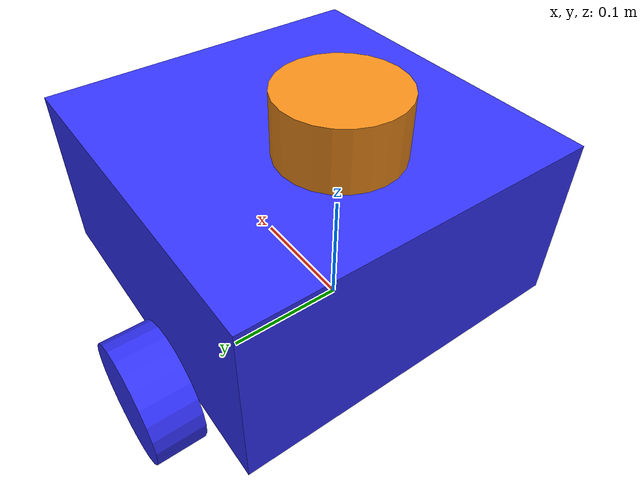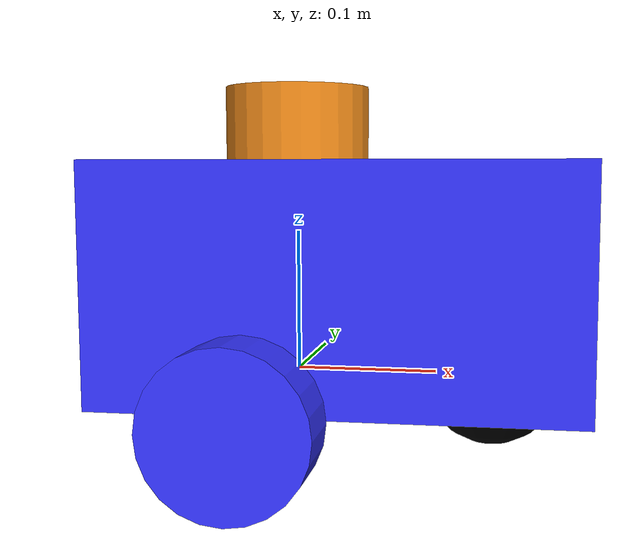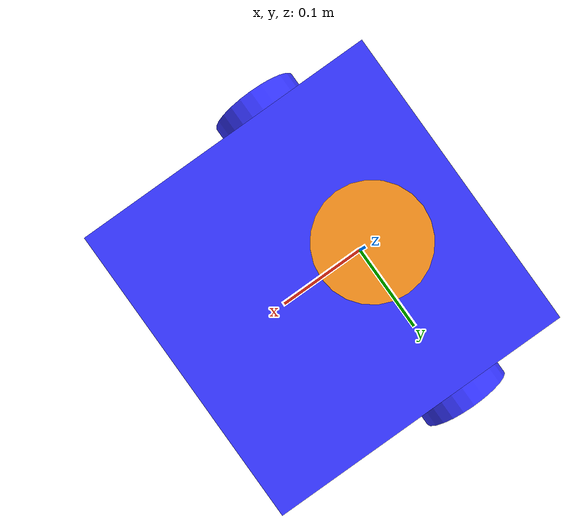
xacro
<?xml version="1.0"?>
<robot xmlns:xacro="http://www.ros.org/wiki/xacro">

    <xacro:include filename="inertial_macros.xacro" />

    <material name="white">
        <color rgba="1 1 1 1" />
    </material>

    <material name="orange">
        <color rgba="1 0.3 0.1 1" />
    </material>

    <material name="blue">
        <color rgba="0.2 0.2 1 1" />
    </material>

    <material name="black">
        <color rgba="0 0 0 1" />
    </material>

    <!-- BASE LINK -->

    <link name="base_link"></link>

    <!-- CHASSIS LINK -->

    <joint name="chassis_joint" type="fixed">
        <parent link="base_link" />
        <child link="chassis" />
        <origin xyz="-0.1 0 0" />
    </joint>

    <link name="chassis">
        <visual>
            <origin xyz="0.15 0 0.075" />
            <geometry>
                <box size="0.3 0.3 0.15" />
            </geometry>
            <material name="blue" />
        </visual>
        <collision>
            <origin xyz="0.15 0 0.075" />
            <geometry>
                <box size="0.3 0.3 0.15" />
            </geometry>
        </collision>
        <xacro:inertial_box mass="0.5" x="0.3" y="0.3" z="0.15">
            <origin xyz="0.15 0 0.075" rpy="0 0 0" />
        </xacro:inertial_box>
    </link>

    <gazebo reference="chassis">
        <material>Gazebo/White</material>
    </gazebo>

    <!-- LEFT WHEEL LINK -->

    <joint name="left_wheel_joint" type="continuous">
        <parent link="base_link" />
        <child link="left_wheel" />
        <origin xyz="0 0.175 0" rpy="-${pi/2} 0 0" /> <!--CHANGING TO CHECK RVIZ2-->
        <axis xyz="0 0 1" />
    </joint>

    <link name="left_wheel">
        <visual>
            <geometry>
                <cylinder radius="0.05" length="0.04" />
            </geometry>
            <material name="blue" />
        </visual>
        <collision>
            <geometry>
                <cylinder radius="0.05" length="0.04" />
            </geometry>
        </collision>
        <xacro:inertial_cylinder mass="0.1" length="0.04" radius="0.05">
            <origin xyz="0 0 0" rpy="0 0 0" />
        </xacro:inertial_cylinder>
    </link>

    <gazebo reference="left_wheel">
        <material>Gazebo/Blue</material>
    </gazebo>

    <!-- RIGHT WHEEL LINK -->

    <joint name="right_wheel_joint" type="continuous">
        <parent link="base_link" />
        <child link="right_wheel" />
        <origin xyz="0 -0.175 0" rpy="${pi/2} 0 0" />
        <axis xyz="0 0 -1" />
    </joint>

    <link name="right_wheel">
        <visual>
            <geometry>
                <cylinder radius="0.05" length="0.04" />
            </geometry>
            <material name="blue" />
        </visual>
        <collision>
            <geometry>
                <cylinder radius="0.05" length="0.04" />
            </geometry>
        </collision>
        <xacro:inertial_cylinder mass="0.1" length="0.04" radius="0.05">
            <origin xyz="0 0 0" rpy="0 0 0" />
        </xacro:inertial_cylinder>
    </link>

    <gazebo reference="right_wheel">
        <material>Gazebo/Blue</material>
    </gazebo>

    <!-- CASTER WHEEL LINK -->

    <joint name="caster_wheel_joint" type="fixed">
        <parent link="chassis" />
        <child link="caster_wheel" />
        <origin xyz="0.24 0 0" />
    </joint>

    <link name="caster_wheel">
        <visual>
            <geometry>
                <sphere radius="0.05" />
            </geometry>
            <material name="black" />
        </visual>
        <collision>
            <geometry>
                <sphere radius="0.05" />
            </geometry>
        </collision>
        <xacro:inertial_sphere mass="0.1" radius="0.05">
            <origin xyz="0 0 0" rpy="0 0 0" />
        </xacro:inertial_sphere>
    </link>

    <gazebo reference="caster_wheel">
        <material>Gazebo/Black</material>
        <mu1 value="0.001" />
        <mu2 value="0.001" />
    </gazebo>

    <!-- LIDAR LINK -->

    <link name="lidar_link">
        <inertial>
            <origin xyz="0 0 0" rpy="0 0 0" />
            <mass value="0.125" />
            <inertia ixx="0.001" ixy="0" ixz="0" iyy="0.001" iyz="0" izz="0.001" />
        </inertial>

        <collision>
            <origin xyz="0 0 0" rpy="0 0 0" />
            <geometry>
                <cylinder radius="0.0508" length="0.055" />
            </geometry>
        </collision>

        <visual>
            <origin xyz="0 0 0" rpy="0 0 0" />
            <geometry>
                <cylinder radius="0.0508" length="0.055" />
            </geometry>
        </visual>
    </link>

    <joint name="lidar_joint" type="fixed">
        <parent link="base_link" />
        <child link="lidar_link" />
        <origin xyz="0 0 0.175" rpy="0 0 0" />
    </joint>

    <gazebo reference="lidar_link">
        <sensor name="lidar" type="ray">
            <always_on>true</always_on>
            <visualize>true</visualize>
            <update_rate>5</update_rate>
            <ray>
                <scan>
                    <horizontal>
                        <samples>360</samples>
                        <resolution>1.000000</resolution>
                        <min_angle>0.000000</min_angle>
                        <max_angle>6.280000</max_angle>
                    </horizontal>
                </scan>
                <range>
                    <min>0.120000</min>
                    <max>3.5</max>
                    <resolution>0.015000</resolution>
                </range>
                <noise>
                    <type>gaussian</type>
                    <mean>0.0</mean>
                    <stddev>0.01</stddev>
                </noise>
            </ray>
            <plugin name="scan" filename="libgazebo_ros_ray_sensor.so">
                <ros>
                    <remapping>~/out:=scan</remapping>
                </ros>
                <output_type>sensor_msgs/LaserScan</output_type>
                <frame_name>lidar_link</frame_name>
            </plugin>
        </sensor>
        <material>Gazebo/Orange</material>
    </gazebo>

    <!-- MAIN ROTOR AXLE LINK -->

    <!-- MAIN ROTOR LINK -->

</robot>
